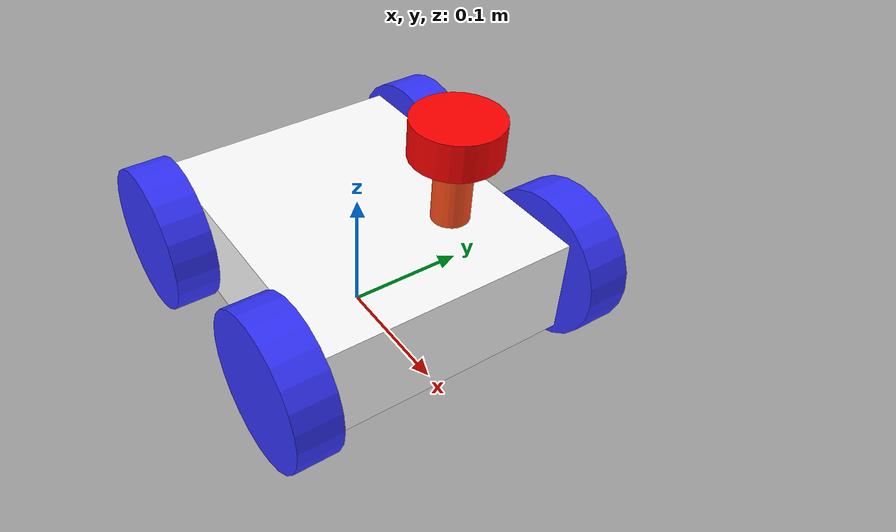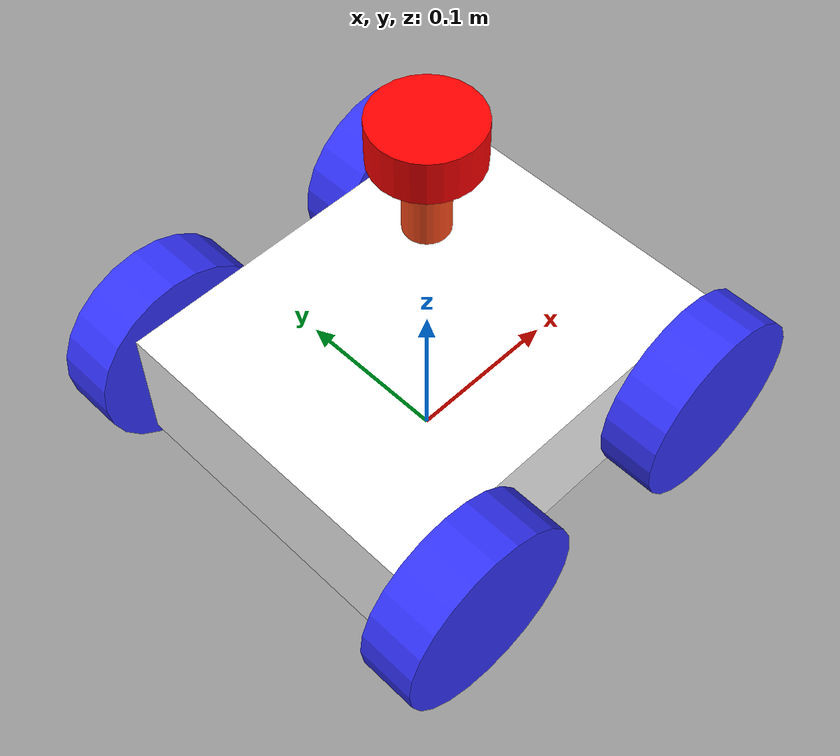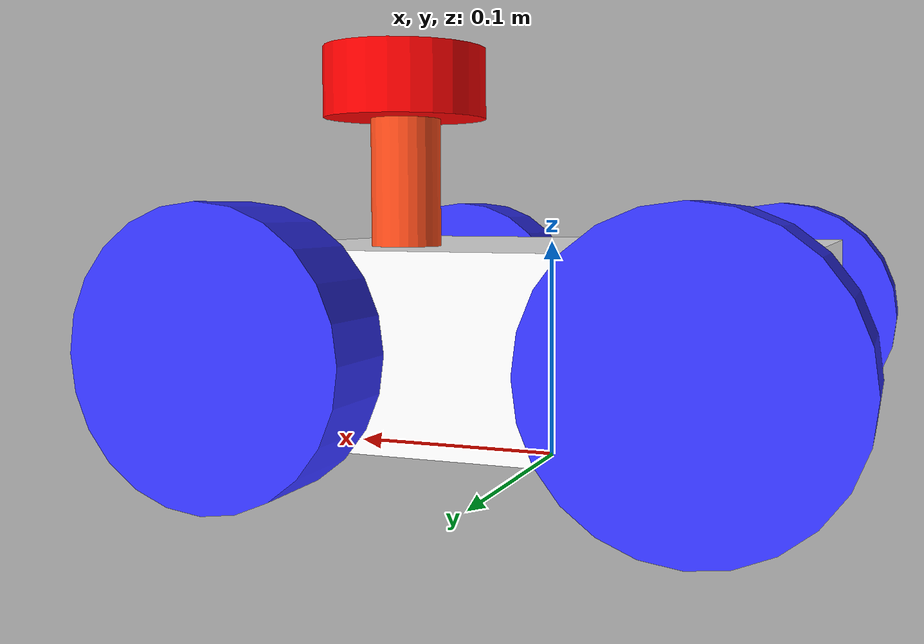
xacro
<?xml version="1.0"?>
<robot name="mars_rover" xmlns:xacro="http://www.ros.org/wiki/xacro">

    <xacro:arg name="use_ros2_control" default="true"/>

    <xacro:include filename="robot_core.xacro"/>

    <xacro:if value="$(arg use_ros2_control)">
        <xacro:include filename="ros2_control.xacro"/>
    </xacro:if>
    <xacro:unless value="$(arg use_ros2_control)">
        <xacro:include filename="gazebo_control.xacro"/>
    </xacro:unless>

    <xacro:include filename="lidar.xacro"/>

</robot>

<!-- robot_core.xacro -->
<robot xmlns:xacro="http://www.ros.org/wiki/xacro">

    <xacro:include filename="inertial_macros.xacro"/>

    <material name="white">
        <color rgba="1 1 1 1"/>
    </material>

    <material name="orange">
        <color rgba="1 0.3 0.1 1"/>
    </material>

    <material name="blue">
        <color rgba="0.2 0.2 1 1"/>
    </material>

    <material name="black">
        <color rgba="0 0 0 1"/>
    </material>

    <material name="red">
        <color rgba="1 0 0 1"/>
    </material>

    <!-- BASE LINK -->

    <link name="base_link">

    </link>

    <!-- BASE_FOOTPRINT LINK -->
    <joint name="base_footprint_joint" type="fixed">
        <parent link="base_link"/>
        <child link="base_footprint"/>
        <origin xyz="0 0 0" rpy="0 0 0"/>
    </joint>

    <link name="base_footprint">
    </link>

    <!-- CHASSIS LINK -->

    <joint name="chassis_joint" type="fixed">
        <parent link="base_link"/>
        <child link="chassis"/>
        <origin xyz="0 0 0.0591"/>
    </joint>

    <link name="chassis">
        <visual>
            <origin xyz="0 0 0"/>
            <geometry>
                <box size="0.24765 0.2032 0.08"/>
            </geometry>
            <material name="white"/>
        </visual>
        <collision>
            <origin xyz="0 0 0"/>
            <geometry>
                <box size="0.24765 0.2032 0.08"/>
            </geometry>
        </collision>
        <xacro:inertial_box mass="0.7" x="0.24765" y="0.2032" z="0.08">
            <origin xyz="0 0 0" rpy="0 0 0"/>
        </xacro:inertial_box>
    </link>

    <gazebo reference="chassis">
        <material>Gazebo/White</material>
    </gazebo>

    <!-- FRONT LEFT WHEEL LINK -->

    <joint name="front_left_wheel_joint" type="continuous">
        <parent link="chassis"/>
        <child link="front_left_wheel"/>
        <origin xyz="0.092075 0.1214 0" rpy="0 0 0"/>
        <axis xyz="0 1 0"/>
    </joint>

    <link name="front_left_wheel">
        <visual>
            <origin xyz="0 0 0" rpy="1.5708 0 0"/>
            <geometry>
                <cylinder radius="0.0591" length="0.034925"/>
            </geometry>
            <material name="blue"/>
        </visual>
        <collision>
            <origin xyz="0 0 0" rpy="1.5708 0 0"/>
            <geometry>
                <cylinder radius="0.0591" length="0.034925"/>
            </geometry>
        </collision>
        <xacro:inertial_cylinder mass="0.2" length="0.034925" radius="0.0591">
            <origin xyz="0 0 0" rpy="1.5708 0 0"/>
        </xacro:inertial_cylinder>
    </link>

    <gazebo reference="front_left_wheel">
        <material>Gazebo/Blue</material>
    </gazebo>

        <!-- FRONT RIGHT WHEEL LINK -->

    <joint name="front_right_wheel_joint" type="continuous">
        <parent link="chassis"/>
        <child link="front_right_wheel"/>
        <origin xyz="0.092075 -0.1214 0" rpy="0 0 0"/>
        <axis xyz="0 1 0"/>
    </joint>

    <link name="front_right_wheel">
        <visual>
            <origin xyz="0 0 0" rpy="1.5708 0 0"/>
            <geometry>
                <cylinder radius="0.0591" length="0.034925"/>
            </geometry>
            <material name="blue"/>
        </visual>
        <collision>
            <origin xyz="0 0 0" rpy="1.5708 0 0"/>
            <geometry>
                <cylinder radius="0.0591" length="0.034925"/>
            </geometry>
        </collision>
        <xacro:inertial_cylinder mass="0.2" length="0.034925" radius="0.0591">
            <origin xyz="0 0 0" rpy="1.5708 0 0"/>
        </xacro:inertial_cylinder>
    </link>

    <gazebo reference="front_right_wheel">
        <material>Gazebo/Blue</material>
    </gazebo>

        <!-- BACK LEFT WHEEL LINK -->

    <joint name="back_left_wheel_joint" type="continuous">
        <parent link="chassis"/>
        <child link="back_left_wheel"/>
        <origin xyz="-0.092075 0.1214 0" rpy="0 0 0"/>
        <axis xyz="0 1 0"/>
    </joint>

    <link name="back_left_wheel">
        <visual>
            <origin xyz="0 0 0" rpy="1.5708 0 0"/>
            <geometry>
                <cylinder radius="0.0591" length="0.034925"/>
            </geometry>
            <material name="blue"/>
        </visual>
        <collision>
            <origin xyz="0 0 0" rpy="1.5708 0 0"/>
            <geometry>
                <cylinder radius="0.0591" length="0.034925"/>
            </geometry>
        </collision>
        <xacro:inertial_cylinder mass="0.2" length="0.034925" radius="0.0591">
            <origin xyz="0 0 0" rpy="1.5708 0 0"/>
        </xacro:inertial_cylinder>
    </link>

    <gazebo reference="back_left_wheel">
        <material>Gazebo/Blue</material>
    </gazebo>

        <!-- BACK RIGHT WHEEL LINK -->

    <joint name="back_right_wheel_joint" type="continuous">
        <parent link="chassis"/>
        <child link="back_right_wheel"/>
        <origin xyz="-0.092075 -0.1214 0" rpy="0 0 0"/>
        <axis xyz="0 1 0"/>
    </joint>

    <link name="back_right_wheel">
        <visual>
            <origin xyz="0 0 0" rpy="1.5708 0 0"/>
            <geometry>
                <cylinder radius="0.0591" length="0.034925"/>
            </geometry>
            <material name="blue"/>
        </visual>
        <collision>
            <origin xyz="0 0 0" rpy="1.5708 0 0"/>
            <geometry>
                <cylinder radius="0.0591" length="0.034925"/>
            </geometry>
        </collision>
        <xacro:inertial_cylinder mass="0.2" length="0.034925" radius="0.0591">
            <origin xyz="0 0 0" rpy="1.5708 0 0"/>
        </xacro:inertial_cylinder>
    </link>

    <gazebo reference="back_right_wheel">
        <material>Gazebo/Blue</material>
    </gazebo>

</robot>

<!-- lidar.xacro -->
<robot name="mars_rover" xmlns:xacro="http://www.ros.org/wiki/xacro">

    <joint name="laser_base_joint" type="fixed">
        <parent link="chassis"/>
        <child link="laser_base"/>
        <origin xyz="0.05 0.05 0.0675" rpy="0 0 3.14159"/>
    </joint>

    <link name="laser_base">
        <visual>
            <origin xyz="0 0 0" rpy="0 0 0"/>
            <geometry>
                <cylinder radius="0.015" length="0.055"/>
            </geometry>
            <material name="orange"/>
        </visual>
        <collision>
            <origin xyz="0 0 0" rpy="0 0 0"/>
            <geometry>
                <cylinder radius="0.015" length="0.055"/>
            </geometry>
        </collision>
        <xacro:inertial_cylinder mass="0.2" length="0.055" radius="0.015">
            <origin xyz="0 0 0" rpy="0 0 0"/>
        </xacro:inertial_cylinder>
    </link>

    <Gazebo reference="laser_base">
        <material>Gazebo/Orange</material>
    </Gazebo>

    <joint name="laser_joint" type="fixed">
        <parent link="laser_base"/>
        <child link="laser_frame"/>
        <origin xyz="0 0 0.0425" rpy="0 0 0"/>
    </joint>

    <link name="laser_frame">
        <visual>
            <origin xyz="0 0 0" rpy="0 0 0"/>
            <geometry>
                <cylinder radius="0.035" length="0.03"/>
            </geometry>
            <material name="red"/>
        </visual>
        <collision>
            <origin xyz="0 0 0" rpy="0 0 0"/>
            <geometry>
                <cylinder radius="0.035" length="0.03"/>
            </geometry>
        </collision>
        <xacro:inertial_cylinder mass="0.2" length="0.035" radius="0.03">
            <origin xyz="0 0 0" rpy="0 0 0"/>
        </xacro:inertial_cylinder>
    </link>

    <gazebo reference="laser_frame">
        <material>Gazebo/Red</material>

        <sensor name="laser" type="ray">
            <pose> 0 0 0 0 0 0 </pose>
            <visualize>true</visualize>
            <update_rate>10</update_rate>
            <ray>
                <scan>
                    <horizontal>
                        <samples>360</samples>
                        <min_angle>-3.14</min_angle>
                        <max_angle>3.14</max_angle>
                    </horizontal>
                </scan>
                <range>
                    <min>0.3</min>
                    <max>12</max>
                </range>
            </ray>
            <plugin name="laser_controller" filename="libgazebo_ros_ray_sensor.so">
                <ros>
                    <argument>~/out:=scan</argument>
                </ros>
                <output_type>sensor_msgs/LaserScan</output_type>
                <frame_name>laser_frame</frame_name>
            </plugin>
        </sensor>
    </gazebo>
</robot>
